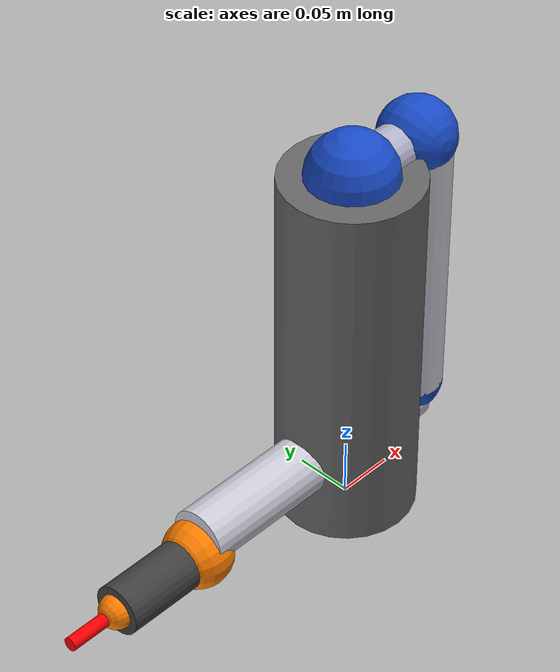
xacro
<?xml version="1.0" ?>
<robot name="sixaxis_robot" xmlns:xacro="http://ros.org/wiki/xacro">

  <xacro:property name="PI"    value="3.14159265358979"/>
  <!-- DH parameters -->
  <xacro:property name="D0"   value="0.33"/>    <!-- d[0]: waist height -->
  <xacro:property name="A1"   value="0.075"/>   <!-- a[1]: shoulder lateral offset -->
  <xacro:property name="A2"   value="0.25"/>    <!-- a[2]: upper arm length -->
  <xacro:property name="A3"   value="0.03"/>    <!-- a[3]: elbow geometry offset -->
  <xacro:property name="D3"   value="0.25"/>    <!-- d[3]: forearm length -->
  <xacro:property name="D5"   value="0.09"/>    <!-- d[5]: wrist-to-tool length -->

  <xacro:property name="LINK_R"    value="0.030"/>
  <xacro:property name="LINK_MASS" value="2.0"/>

  <!-- ── world ─────────────────────────────────────────────────── -->
  <link name="world"/>
  <joint name="world_to_base" type="fixed">
    <parent link="world"/>
    <child  link="base_link"/>
    <origin xyz="0 0 0" rpy="0 0 0"/>
  </joint>

  <!-- base: visual pillar up to shoulder height D0 -->
  <link name="base_link">
    <inertial>
      <origin xyz="0 0 ${D0/2}" rpy="0 0 0"/>
      <mass value="10.0"/>
      <inertia ixx="0.1" ixy="0" ixz="0" iyy="0.1" iyz="0" izz="0.05"/>
    </inertial>
    <visual>
      <origin xyz="0 0 ${D0/2}" rpy="0 0 0"/>
      <geometry><cylinder radius="0.060" length="${D0}"/></geometry>
      <material name="base_grey"><color rgba="0.4 0.4 0.4 1"/></material>
    </visual>
    <collision>
      <origin xyz="0 0 ${D0/2}" rpy="0 0 0"/>
      <geometry><cylinder radius="0.060" length="${D0}"/></geometry>
    </collision>
  </link>

  <!-- ── J0: waist ── T_fixed_0 = Trans_z(D0) ─────────────────── -->
  <joint name="JOINT_0_ACT" type="revolute">
    <parent link="base_link"/>
    <child  link="link_1"/>
    <origin xyz="0 0 ${D0}" rpy="0 0 0"/>
    <axis xyz="0 0 1"/>
    <limit lower="${-PI}" upper="${PI}" effort="200" velocity="2.09"/>
    <dynamics damping="0.5" friction="0.2"/>
  </joint>

  <!-- link_1: waist hub + stub toward J1 (A1 along X of frame 0) -->
  <link name="link_1">
    <inertial>
      <origin xyz="${A1/2} 0 0" rpy="0 ${PI/2} 0"/>
      <mass value="${LINK_MASS}"/>
      <inertia ixx="0.01" ixy="0" ixz="0" iyy="0.01" iyz="0" izz="0.005"/>
    </inertial>
    <!-- shoulder hub sphere -->
    <visual>
      <origin xyz="0 0 0" rpy="0 0 0"/>
      <geometry><sphere radius="${LINK_R * 1.3}"/></geometry>
      <material name="blue"><color rgba="0.1 0.3 0.8 1"/></material>
    </visual>
    <!-- stub cylinder from hub to J1 along X -->
    <visual>
      <origin xyz="${A1/2} 0 0" rpy="0 ${PI/2} 0"/>
      <geometry><cylinder radius="${LINK_R * 0.7}" length="${A1}"/></geometry>
      <material name="silver"><color rgba="0.7 0.7 0.8 1"/></material>
    </visual>
    <collision>
      <origin xyz="${A1/2} 0 0" rpy="0 ${PI/2} 0"/>
      <geometry><cylinder radius="${LINK_R * 0.7}" length="${A1}"/></geometry>
    </collision>
  </link>

  <joint name="JOINT_1_ACT" type="revolute">
    <parent link="link_1"/>
    <child  link="link_2"/>
    <origin xyz="${A1} 0 0" rpy="${-PI/2} ${PI/2} 0"/>
    <axis xyz="0 0 1"/>
    <limit lower="${-PI}" upper="${PI}" effort="150" velocity="2.09"/>
    <dynamics damping="0.5" friction="0.2"/>
  </joint>

  <!-- link_2: upper arm from J1 to J2 (A2 along X of frame 1) -->
  <link name="link_2">
    <inertial>
      <origin xyz="${A2/2} 0 0" rpy="0 ${PI/2} 0"/>
      <mass value="${LINK_MASS}"/>
      <inertia ixx="0.02" ixy="0" ixz="0" iyy="0.02" iyz="0" izz="0.005"/>
    </inertial>
    <!-- shoulder joint sphere -->
    <visual>
      <origin xyz="0 0 0" rpy="0 0 0"/>
      <geometry><sphere radius="${LINK_R * 1.1}"/></geometry>
      <material name="blue"><color rgba="0.1 0.3 0.8 1"/></material>
    </visual>
    <!-- upper arm cylinder along X -->
    <visual>
      <origin xyz="${A2/2} 0 0" rpy="0 ${PI/2} 0"/>
      <geometry><cylinder radius="${LINK_R}" length="${A2}"/></geometry>
      <material name="silver"><color rgba="0.8 0.8 0.85 1"/></material>
    </visual>
    <collision>
      <origin xyz="${A2/2} 0 0" rpy="0 ${PI/2} 0"/>
      <geometry><cylinder radius="${LINK_R}" length="${A2}"/></geometry>
    </collision>
  </link>

  <joint name="JOINT_2_ACT" type="revolute">
    <parent link="link_2"/>
    <child  link="link_3"/>
    <origin xyz="${A2} 0 0" rpy="0 0 0"/>
    <axis xyz="0 0 1"/>
    <limit lower="${-PI}" upper="${PI}" effort="100" velocity="2.61"/>
    <dynamics damping="0.3" friction="0.1"/>
  </joint>

  <!-- link_3: forearm from J2 to J3 (primarily D3 along Y, minor A3 along X) -->
  <link name="link_3">
    <inertial>
      <origin xyz="${A3/2} ${D3/2} 0" rpy="${-PI/2} 0 0"/>
      <mass value="${LINK_MASS * 0.8}"/>
      <inertia ixx="0.015" ixy="0" ixz="0" iyy="0.015" iyz="0" izz="0.004"/>
    </inertial>
    <!-- elbow hub sphere -->
    <visual>
      <origin xyz="0 0 0" rpy="0 0 0"/>
      <geometry><sphere radius="${LINK_R * 1.0}"/></geometry>
      <material name="blue"><color rgba="0.1 0.3 0.8 1"/></material>
    </visual>
    <!-- forearm cylinder: center at (A3/2, D3/2, 0), along Y (rpy="-PI/2 0 0") -->
    <visual>
      <origin xyz="${A3/2} ${D3/2} 0" rpy="${-PI/2} 0 0"/>
      <geometry><cylinder radius="${LINK_R * 0.85}" length="${D3}"/></geometry>
      <material name="silver"><color rgba="0.8 0.8 0.85 1"/></material>
    </visual>
    <collision>
      <origin xyz="${A3/2} ${D3/2} 0" rpy="${-PI/2} 0 0"/>
      <geometry><cylinder radius="${LINK_R * 0.85}" length="${D3}"/></geometry>
    </collision>
  </link>

  <joint name="JOINT_3_ACT" type="revolute">
    <parent link="link_3"/>
    <child  link="link_4"/>
    <origin xyz="${A3} ${D3} 0" rpy="${-PI/2} 0 0"/>
    <axis xyz="0 0 1"/>
    <limit lower="${-PI}" upper="${PI}" effort="60" velocity="3.14"/>
    <dynamics damping="0.2" friction="0.1"/>
  </joint>

  <!-- link_4: wrist hub at J3/J4 -->
  <link name="link_4">
    <inertial>
      <origin xyz="0 0 0" rpy="0 0 0"/>
      <mass value="0.5"/>
      <inertia ixx="0.002" ixy="0" ixz="0" iyy="0.002" iyz="0" izz="0.001"/>
    </inertial>
    <visual>
      <origin xyz="0 0 0" rpy="0 0 0"/>
      <geometry><sphere radius="${LINK_R}"/></geometry>
      <material name="orange"><color rgba="1.0 0.5 0.0 1"/></material>
    </visual>
    <collision>
      <origin xyz="0 0 0" rpy="0 0 0"/>
      <geometry><sphere radius="${LINK_R}"/></geometry>
    </collision>
  </link>

  <!-- ── J4: wrist pitch ────────────────────────────────────────
       T_fixed_4 = Rot_x(PI/2),  xyz = (0,0,0),  rpy = (PI/2, 0, 0)
  ─────────────────────────────────────────────────────────────── -->
  <joint name="JOINT_4_ACT" type="revolute">
    <parent link="link_4"/>
    <child  link="link_5"/>
    <origin xyz="0 0 0" rpy="${PI/2} 0 0"/>
    <axis xyz="0 0 1"/>
    <limit lower="${-PI * 0.75}" upper="${PI * 0.75}" effort="30" velocity="3.66"/>
    <dynamics damping="0.1" friction="0.05"/>
  </joint>

  <!-- link_5: wrist arm from J4 to J5 (D5 along Y of frame 4) -->
  <link name="link_5">
    <inertial>
      <origin xyz="0 ${D5/2} 0" rpy="${-PI/2} 0 0"/>
      <mass value="0.3"/>
      <inertia ixx="0.001" ixy="0" ixz="0" iyy="0.001" iyz="0" izz="0.0005"/>
    </inertial>
    <!-- wrist tube along Y, from (0,0,0) to (0,D5,0) -->
    <visual>
      <origin xyz="0 ${D5/2} 0" rpy="${-PI/2} 0 0"/>
      <geometry><cylinder radius="0.022" length="${D5}"/></geometry>
      <material name="dark"><color rgba="0.25 0.25 0.25 1"/></material>
    </visual>
    <collision>
      <origin xyz="0 ${D5/2} 0" rpy="${-PI/2} 0 0"/>
      <geometry><cylinder radius="0.022" length="${D5}"/></geometry>
    </collision>
  </link>

  <joint name="JOINT_5_ACT" type="revolute">
    <parent link="link_5"/>
    <child  link="link_6"/>
    <origin xyz="0 ${D5} 0" rpy="${-PI/2} 0 0"/>
    <axis xyz="0 0 1"/>
    <limit lower="${-PI}" upper="${PI}" effort="20" velocity="5.23"/>
    <dynamics damping="0.05" friction="0.02"/>
  </joint>

  <!-- link_6: end-effector — TCP is at the origin of this frame -->
  <link name="link_6">
    <inertial>
      <origin xyz="0 0 0" rpy="0 0 0"/>
      <mass value="0.10"/>
      <inertia ixx="0.0002" ixy="0" ixz="0" iyy="0.0002" iyz="0" izz="0.0001"/>
    </inertial>
    <!-- TCP marker: orange sphere at EE origin -->
    <visual>
      <origin xyz="0 0 0" rpy="0 0 0"/>
      <geometry><sphere radius="0.015"/></geometry>
      <material name="orange"><color rgba="1.0 0.5 0.0 1"/></material>
    </visual>
    <!-- Tool Z-axis indicator: red stub along Z of EE frame -->
    <visual>
      <origin xyz="0 0 0.025" rpy="0 0 0"/>
      <geometry><cylinder radius="0.006" length="0.05"/></geometry>
      <material name="red"><color rgba="1.0 0.0 0.0 1"/></material>
    </visual>
    <collision>
      <origin xyz="0 0 0" rpy="0 0 0"/>
      <geometry><sphere radius="0.015"/></geometry>
    </collision>
  </link>

</robot>
